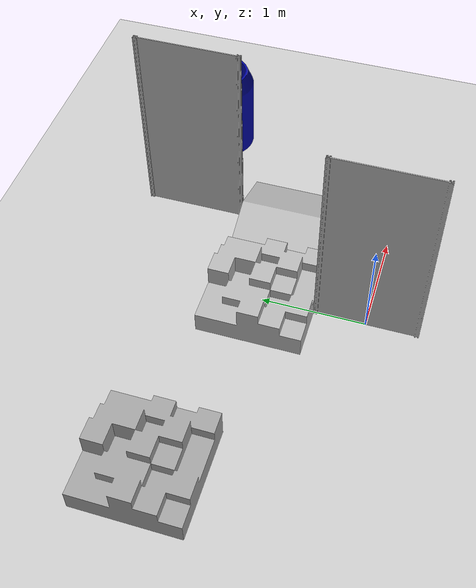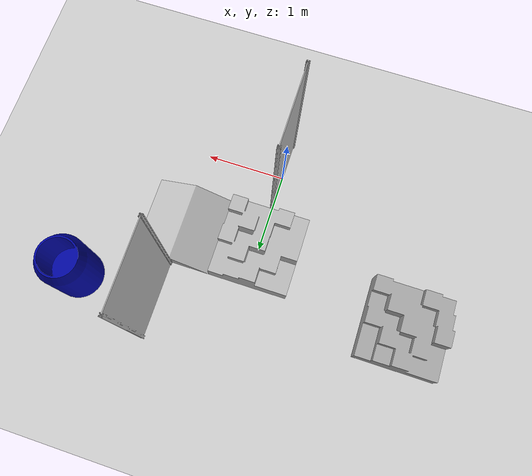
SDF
<?xml version="1.0"?>
<sdf version="1.4">
  <world name="default">
    <include>
      <uri>model://ground_plane</uri>
    </include>
    <include>
      <uri>model://sun</uri>
    </include>
    <model name="sidewall">
      <pose>0 0 0  0 0 0</pose>
      <static>true</static>
      <link name="body">
        <visual name="visual">
          <geometry>
            <mesh><uri>file://models/sidewall.dae</uri></mesh>
          </geometry>
        </visual>
      </link>
    </model>

    <model name="sidewall">
      <pose>1 2 0  0 0 0</pose>
      <static>true</static>
      <link name="body">
        <visual name="visual">
          <geometry>
            <mesh><uri>file://models/sidewall.dae</uri></mesh>
          </geometry>
        </visual>
      </link>
    </model>
    <model name="barrel">
      <pose>2 2 0  0 0 0</pose>
      <static>true</static>
      <link name="body">
        <visual name="visual">
          <geometry>
            <mesh><uri>file://models/barrel.dae</uri></mesh>
          </geometry>
        </visual>
      </link>
    </model>
    <model name="uneven_surface">
      <pose>0 1 0  0 0 0</pose>
      <static>true</static>
      <link name="body">
        <visual name="visual">
          <geometry>
            <mesh><uri>file://models/uneven_surface.dae</uri></mesh>
          </geometry>
        </visual>
      </link>
    </model>
    <model name="ramp">
      <pose>1 1 0  0 0 0</pose>
      <static>true</static>
      <link name="body">
        <visual name="visual">
          <geometry>
            <mesh><uri>file://models/ramp.dae</uri></mesh>
          </geometry>
        </visual>
      </link>
    </model>
    <model name="uneven_surface_cr">
      <pose>1 1 0  0 0 0</pose>
      <static>true</static>
      <link name="body">
        <visual name="visual">
          <geometry>
            <mesh><uri>file://models/uneven_surface_cr.dae</uri></mesh>
          </geometry>
        </visual>
      </link>
    </model>
  </world>
</sdf>
